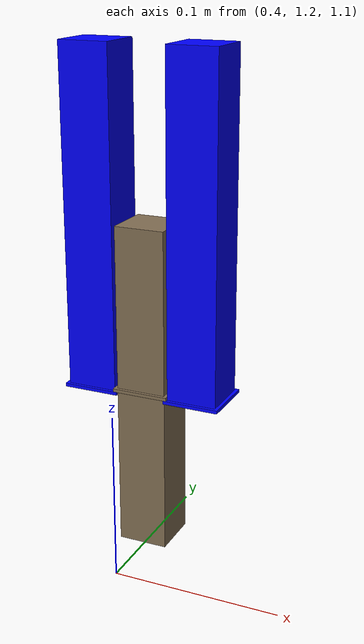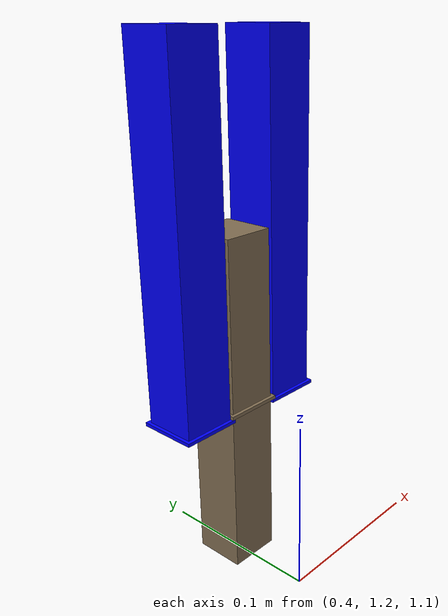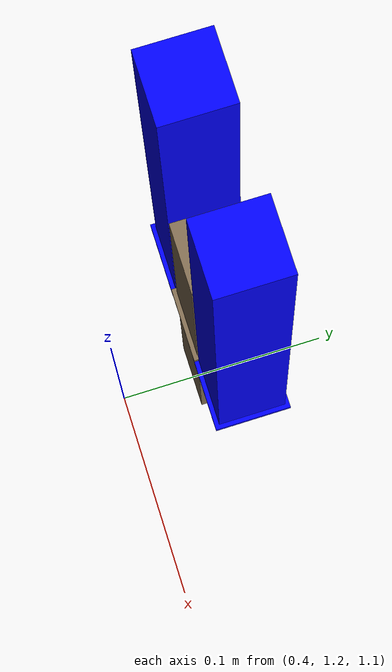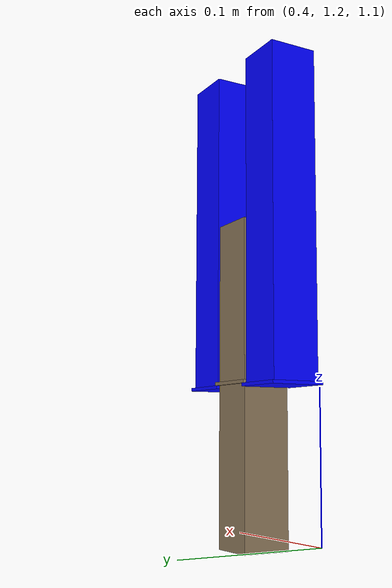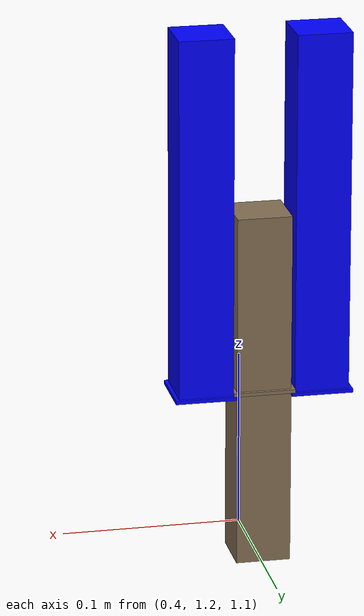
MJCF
<mujoco>
  <worldbody>
    <body name="cushion" pos=".4 1.25 1.201" quat="1 0 0 0">
      <joint name="cushion_joint" type="free" frictionloss="0.01" />
      <geom name="cushion_lower" condim="4" solimp="0.9 0.95 0.001" solref="0.02 1" friction="2 0.1 0.001" pos="0 0 -0.05" type="box" size=".015 .015 .049"  rgba="0.51764706 0.43921569 0.32941176 1"/>
      <geom name="cushion_stopper" condim="4" solimp="0.9 0.95 0.001" solref="0.02 1" friction="2 0.1 0.001" pos="0 0 0" type="box" size=".017 .017 .001"  rgba="0.51764706 0.43921569 0.32941176 1"/>
      <geom name="cushion_upper" condim="4" solimp="0.9 0.95 0.001" solref="0.02 1" friction="2 0.1 0.001" pos="0 0 0.05" type="box" size=".015 .015 .049"  rgba="0.51764706 0.43921569 0.32941176 1"/>
      <inertial pos="0 0 0" mass="0.01" diaginertia="0.002 0.002 0.002" />
    </body>

    <body name="left_nail" pos="0.368 1.25 1.3" quat="1 0 0 0">
      <geom condim="4" solimp="0.9 0.95 0.001" solref="0.02 1" friction="0.1 0.1 0.001" pos="0 0 0"  name="left_nail" type="box" size=".015 .015 .1"  rgba="0 0 1 1"/>
      <geom condim="4" solimp="0.9 0.95 0.001" solref="0.02 1" friction="2 0.1 0.001" pos="0 0 -0.101" type="box" size=".01700000001 .01700000001 .001" rgba="0 0 1 1"/>
      <inertial pos="0 0 0" mass="0.01" diaginertia="0.002 0.002 0.002" />
    </body>

    <body name="right_nail" pos="0.432 1.25 1.3" quat="1 0 0 0">
      <geom condim="4" solimp="0.9 0.95 0.001" solref="0.02 1" friction="0.1 0.1 0.001" pos="0 0 0"  name="right_nail" type="box" size=".015 .015 .1"  rgba="0 0 1 1"/>
      <geom condim="4" solimp="0.9 0.95 0.001" solref="0.02 1" friction="2 0.1 0.001" pos="0 0 -0.101" type="box" size=".01700000001 .01700000001 .001" rgba="0 0 1 1"/>
      <inertial pos="0 0 0" mass="0.01" diaginertia="0.002 0.002 0.002" />
    </body>

  </worldbody>
</mujoco>
